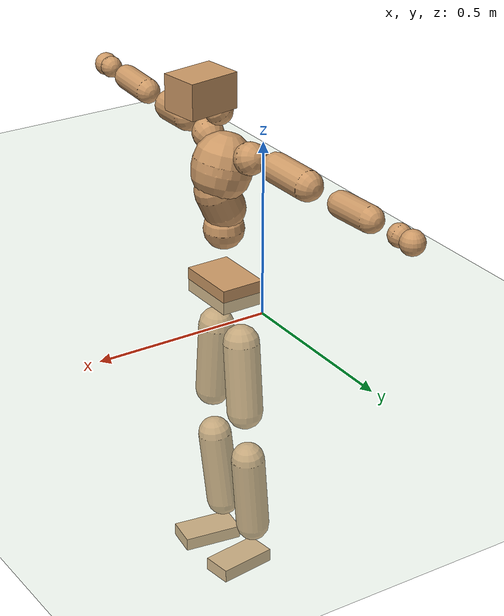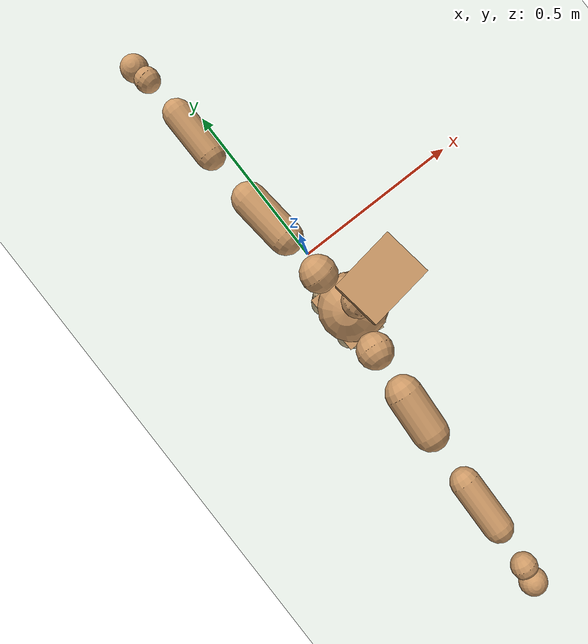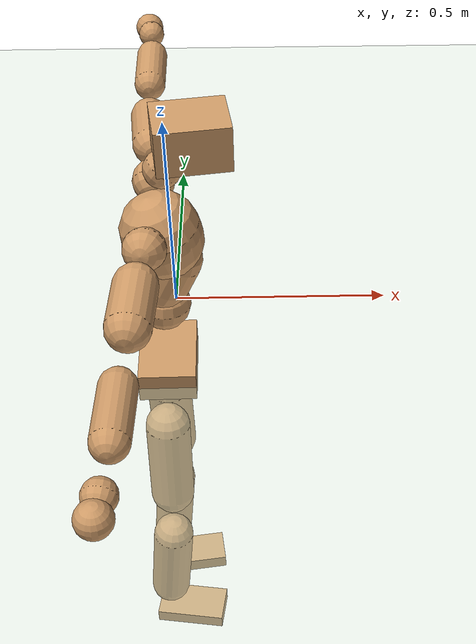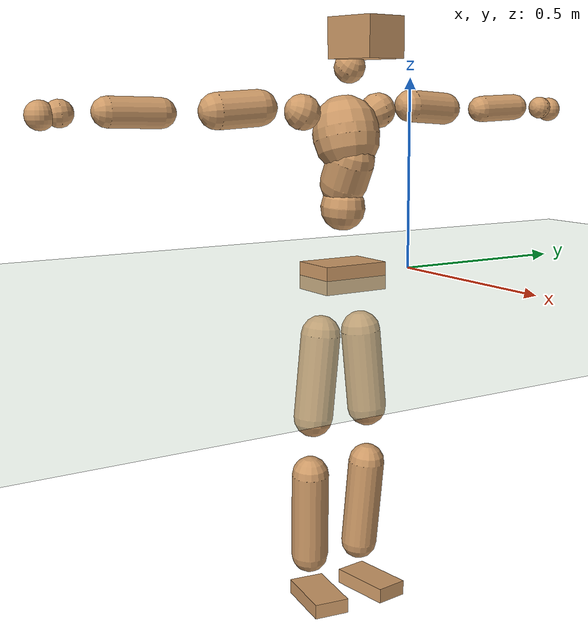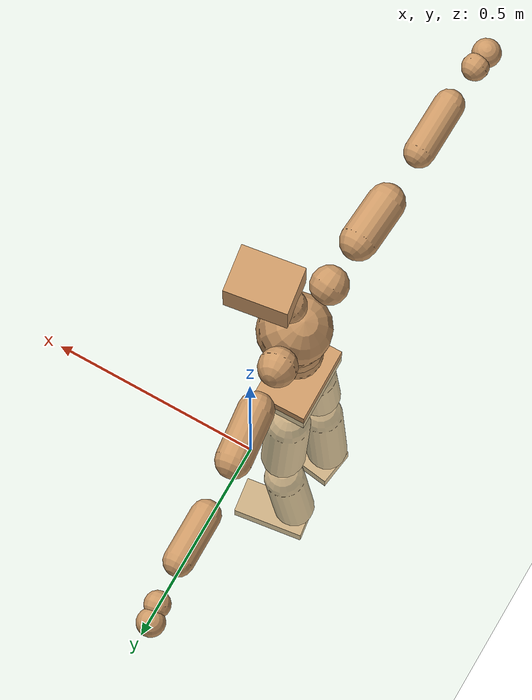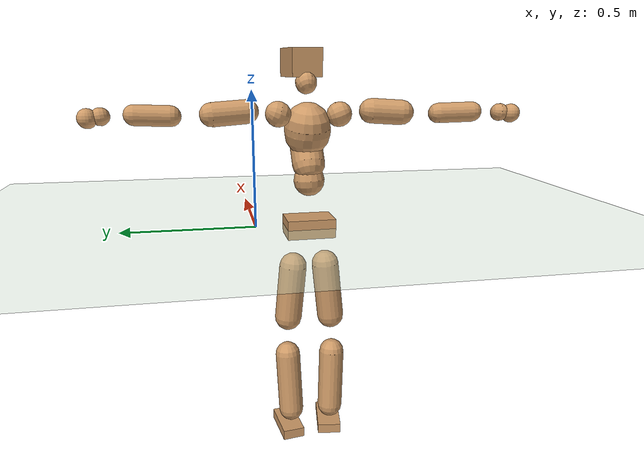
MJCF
<mujoco model="humanoid">
  <compiler coordinate="local" angle="radian"/>
  <default>
    <joint damping="0.0" armature="0.01" stiffness="0.0" limited="true"/>
    <geom conaffinity="1" condim="3" contype="7" margin="0.001" rgba="0.8 0.6 .4 1"/>
  </default>
  <asset>
    <texture type="skybox" builtin="gradient" rgb1=".4 .5 .6" rgb2="0 0 0" width="100" height="100"/>
    <texture builtin="flat" height="1278" mark="cross" markrgb="1 1 1" name="texgeom" random="0.01" rgb1="0.8 0.6 0.4" rgb2="0.8 0.6 0.4" type="cube" width="127"/>
    <texture builtin="checker" height="100" name="texplane" rgb1="0 0 0" rgb2="0.8 0.8 0.8" type="2d" width="100"/>
    <material name="MatPlane" reflectance="0.5" shininess="1" specular="1" texrepeat="60 60" texture="texplane"/>
    <material name="geom" texture="texgeom" texuniform="true"/>
  </asset>
  <worldbody>
    <light cutoff="100" diffuse="1 1 1" dir="-0 0 -1.3" directional="true" exponent="1" pos="0 0 1.3" specular=".1 .1 .1"/>
    <geom conaffinity="1" condim="3" name="floor" pos="0 0 0" rgba="0.8 0.9 0.8 1" size="100 100 .2" type="plane" material="MatPlane"/>
    <body name="Pelvis" pos="-0.0015 -0.2035 0.0093">
      <freejoint name="Pelvis"/>
      <geom type="box" contype="1" conaffinity="1" density="5359.375082" pos="-0.0072 -0.0001 -0.0120" size="0.0642 0.0913 0.0358" quat="1.0000 0.0000 0.0000 0.0074" name="Pelvis"/>
      <body name="L_Hip" pos="-0.02 0.0571 -0.086">
        <joint name="L_Hip_x" type="hinge" pos="0 0 0" axis="1 0 0" stiffness="1600" damping="160" armature="0.02" range="-180.0000 180.0000"/>
        <joint name="L_Hip_y" type="hinge" pos="0 0 0" axis="0 1 0" stiffness="1600" damping="160" armature="0.02" range="-180.0000 180.0000"/>
        <joint name="L_Hip_z" type="hinge" pos="0 0 0" axis="0 0 1" stiffness="1600" damping="160" armature="0.02" range="-180.0000 180.0000"/>
        <geom type="capsule" contype="1" conaffinity="1" density="2040.816327" size="0.0526" fromto="0.0004 0.0080 -0.0822 0.0014 0.0286 -0.2953" name="L_Hip"/>
        <body name="L_Knee" pos="0.0018 0.0365 -0.3775">
          <joint name="L_Knee_x" type="hinge" pos="0 0 0" axis="1 0 0" stiffness="1600" damping="160" armature="0.02" range="-180.0000 180.0000"/>
          <joint name="L_Knee_y" type="hinge" pos="0 0 0" axis="0 1 0" stiffness="1600" damping="160" armature="0.02" range="-180.0000 180.0000"/>
          <joint name="L_Knee_z" type="hinge" pos="0 0 0" axis="0 0 1" stiffness="1600" damping="160" armature="0.02" range="-180.0000 180.0000"/>
          <geom type="capsule" contype="1" conaffinity="1" density="1234.567901" size="0.0491" fromto="-0.0075 -0.0027 -0.0787 -0.0303 -0.0110 -0.3182" name="L_Knee"/>
          <body name="L_Ankle" pos="-0.0378 -0.0137 -0.3969">
            <joint name="L_Ankle_x" type="hinge" pos="0 0 0" axis="1 0 0" stiffness="1600" damping="160" armature="0.02" range="-180.0000 180.0000"/>
            <joint name="L_Ankle_y" type="hinge" pos="0 0 0" axis="0 1 0" stiffness="1600" damping="160" armature="0.02" range="-180.0000 180.0000"/>
            <joint name="L_Ankle_z" type="hinge" pos="0 0 0" axis="0 0 1" stiffness="1600" damping="160" armature="0.02" range="-180.0000 180.0000"/>
            <geom type="box" contype="1" conaffinity="1" density="999.999946" pos="0.0600 0.0080 -0.0278" size="0.0861 0.0434 0.02" quat="0.9978 0.0000 0.0000 0.0659" name="L_Ankle"/>
            <body name="L_Toe" pos="0.12 0.0159 -0.0556">
              <joint name="L_Toe_x" type="hinge" pos="0 0 0" axis="1 0 0" stiffness="1000" damping="100" armature="0.02" range="-180.0000 180.0000"/>
              <joint name="L_Toe_y" type="hinge" pos="0 0 0" axis="0 1 0" stiffness="1000" damping="100" armature="0.02" range="-180.0000 180.0000"/>
              <joint name="L_Toe_z" type="hinge" pos="0 0 0" axis="0 0 1" stiffness="1000" damping="100" armature="0.02" range="-180.0000 180.0000"/>
              <geom type="box" contype="1" conaffinity="1" density="9069497.550901" pos="0.0000 0.0000 0.0280" size="0.0009 0.0022 0.001" quat="0.9973 0.0000 0.0000 0.0729" name="L_Toe"/>
            </body>
          </body>
        </body>
      </body>
      <body name="R_Hip" pos="-0.0159 -0.0544 -0.0841">
        <joint name="R_Hip_x" type="hinge" pos="0 0 0" axis="1 0 0" stiffness="1600" damping="160" armature="0.02" range="-180.0000 180.0000"/>
        <joint name="R_Hip_y" type="hinge" pos="0 0 0" axis="0 1 0" stiffness="1600" damping="160" armature="0.02" range="-180.0000 180.0000"/>
        <joint name="R_Hip_z" type="hinge" pos="0 0 0" axis="0 0 1" stiffness="1600" damping="160" armature="0.02" range="-180.0000 180.0000"/>
        <geom type="capsule" contype="1" conaffinity="1" density="2040.816327" size="0.0519" fromto="-0.0004 -0.0085 -0.0815 -0.0016 -0.0314 -0.3016" name="R_Hip"/>
        <body name="R_Knee" pos="-0.0021 -0.0399 -0.3831">
          <joint name="R_Knee_x" type="hinge" pos="0 0 0" axis="1 0 0" stiffness="1600" damping="160" armature="0.02" range="-180.0000 180.0000"/>
          <joint name="R_Knee_y" type="hinge" pos="0 0 0" axis="0 1 0" stiffness="1600" damping="160" armature="0.02" range="-180.0000 180.0000"/>
          <joint name="R_Knee_z" type="hinge" pos="0 0 0" axis="0 0 1" stiffness="1600" damping="160" armature="0.02" range="-180.0000 180.0000"/>
          <geom type="capsule" contype="1" conaffinity="1" density="1234.567901" size="0.0494" fromto="-0.0073 0.0034 -0.0790 -0.0291 0.0135 -0.3156" name="R_Knee"/>
          <body name="R_Ankle" pos="-0.0364 0.0169 -0.3947">
            <joint name="R_Ankle_x" type="hinge" pos="0 0 0" axis="1 0 0" stiffness="1600" damping="160" armature="0.02" range="-180.0000 180.0000"/>
            <joint name="R_Ankle_y" type="hinge" pos="0 0 0" axis="0 1 0" stiffness="1600" damping="160" armature="0.02" range="-180.0000 180.0000"/>
            <joint name="R_Ankle_z" type="hinge" pos="0 0 0" axis="0 0 1" stiffness="1600" damping="160" armature="0.02" range="-180.0000 180.0000"/>
            <geom type="box" contype="1" conaffinity="1" density="999.999954" pos="0.0615 -0.0087 -0.0222" size="0.0871 0.0469 0.0194" quat="0.9975 0.0000 0.0000 -0.0705" name="R_Ankle"/>
            <body name="R_Toe" pos="0.123 -0.0175 -0.0445">
              <joint name="R_Toe_x" type="hinge" pos="0 0 0" axis="1 0 0" stiffness="1000" damping="100" armature="0.02" range="-180.0000 180.0000"/>
              <joint name="R_Toe_y" type="hinge" pos="0 0 0" axis="0 1 0" stiffness="1000" damping="100" armature="0.02" range="-180.0000 180.0000"/>
              <joint name="R_Toe_z" type="hinge" pos="0 0 0" axis="0 0 1" stiffness="1000" damping="100" armature="0.02" range="-180.0000 180.0000"/>
              <geom type="box" contype="1" conaffinity="1" density="8524218.641998" pos="0.0000 0.0000 0.0253" size="0.0008 0.0023 0.0011" quat="0.9981 0.0000 0.0000 -0.0616" name="R_Toe"/>
            </body>
          </body>
        </body>
      </body>
      <body name="Torso" pos="-0.0075 -0.0034 0.0978">
        <joint name="Torso_x" type="hinge" pos="0 0 0" axis="1 0 0" stiffness="2000" damping="200" armature="0.02" range="-180.0000 180.0000"/>
        <joint name="Torso_y" type="hinge" pos="0 0 0" axis="0 1 0" stiffness="2000" damping="200" armature="0.02" range="-180.0000 180.0000"/>
        <joint name="Torso_z" type="hinge" pos="0 0 0" axis="0 0 1" stiffness="2000" damping="200" armature="0.02" range="-180.0000 180.0000"/>
        <geom type="capsule" contype="1" conaffinity="1" density="2040.816327" size="0.0584" fromto="0.0024 0.0021 0.0659 0.0025 0.0022 0.0679" name="Torso"/>
        <body name="Spine" pos="0.0049 0.0043 0.1338">
          <joint name="Spine_x" type="hinge" pos="0 0 0" axis="1 0 0" stiffness="2000" damping="200" armature="0.02" range="-180.0000 180.0000"/>
          <joint name="Spine_y" type="hinge" pos="0 0 0" axis="0 1 0" stiffness="2000" damping="200" armature="0.02" range="-180.0000 180.0000"/>
          <joint name="Spine_z" type="hinge" pos="0 0 0" axis="0 0 1" stiffness="2000" damping="200" armature="0.02" range="-180.0000 180.0000"/>
          <geom type="capsule" contype="1" conaffinity="1" density="2040.816327" size="0.0611" fromto="0.0261 0.0034 0.0551 -0.0026 -0.0003 -0.0055" name="Spine"/>
          <body name="Chest" pos="0.0235 0.0031 0.0496">
            <joint name="Chest_x" type="hinge" pos="0 0 0" axis="1 0 0" stiffness="2000" damping="200" armature="0.02" range="-180.0000 180.0000"/>
            <joint name="Chest_y" type="hinge" pos="0 0 0" axis="0 1 0" stiffness="2000" damping="200" armature="0.02" range="-180.0000 180.0000"/>
            <joint name="Chest_z" type="hinge" pos="0 0 0" axis="0 0 1" stiffness="2000" damping="200" armature="0.02" range="-180.0000 180.0000"/>
            <geom type="capsule" contype="1" conaffinity="1" density="2040.816327" size="0.0851" fromto="-0.0222 -0.0007 0.0822 -0.0155 -0.0005 0.0574" name="Chest"/>
            <body name="Neck" pos="-0.0362 -0.0016 0.2001">
              <joint name="Neck_x" type="hinge" pos="0 0 0" axis="1 0 0" stiffness="1000" damping="100" armature="0.02" range="-180.0000 180.0000"/>
              <joint name="Neck_y" type="hinge" pos="0 0 0" axis="0 1 0" stiffness="1000" damping="100" armature="0.02" range="-180.0000 180.0000"/>
              <joint name="Neck_z" type="hinge" pos="0 0 0" axis="0 0 1" stiffness="1000" damping="100" armature="0.02" range="-180.0000 180.0000"/>
              <geom type="capsule" contype="1" conaffinity="1" density="1000" size="0.0393" fromto="0.0285 0.0033 0.0332 0.0298 0.0035 0.0347" name="Neck"/>
              <body name="Head" pos="0.0583 0.0068 0.068">
                <joint name="Head_x" type="hinge" pos="0 0 0" axis="1 0 0" stiffness="1000" damping="100" armature="0.02" range="-180.0000 180.0000"/>
                <joint name="Head_y" type="hinge" pos="0 0 0" axis="0 1 0" stiffness="1000" damping="100" armature="0.02" range="-180.0000 180.0000"/>
                <joint name="Head_z" type="hinge" pos="0 0 0" axis="0 0 1" stiffness="1000" damping="100" armature="0.02" range="-180.0000 180.0000"/>
                <geom type="box" contype="1" conaffinity="1" density="2249.999983" pos="0.0302 0.0044 0.0350" size="0.0759 0.0571 0.0505" quat="0.9974 0.0000 0.0000 0.0723" name="Head"/>
              </body>
            </body>
            <body name="L_Thorax" pos="-0.0364 0.0682 0.1108">
              <joint name="L_Thorax_x" type="hinge" pos="0 0 0" axis="1 0 0" stiffness="1000" damping="100" armature="0.02" range="-180.0000 180.0000"/>
              <joint name="L_Thorax_y" type="hinge" pos="0 0 0" axis="0 1 0" stiffness="1000" damping="100" armature="0.02" range="-180.0000 180.0000"/>
              <joint name="L_Thorax_z" type="hinge" pos="0 0 0" axis="0 0 1" stiffness="1000" damping="100" armature="0.02" range="-180.0000 180.0000"/>
              <geom type="capsule" contype="1" conaffinity="1" density="1000" size="0.0455" fromto="-0.0015 0.0423 0.0165 -0.0013 0.0390 0.0152" name="L_Thorax"/>
              <body name="L_Shoulder" pos="-0.0028 0.0814 0.0317">
                <joint name="L_Shoulder_x" type="hinge" pos="0 0 0" axis="1 0 0" stiffness="1000" damping="100" armature="0.02" range="-720.0000 720.0000"/>
                <joint name="L_Shoulder_y" type="hinge" pos="0 0 0" axis="0 1 0" stiffness="1000" damping="100" armature="0.02" range="-720.0000 720.0000"/>
                <joint name="L_Shoulder_z" type="hinge" pos="0 0 0" axis="0 0 1" stiffness="1000" damping="100" armature="0.02" range="-720.0000 720.0000"/>
                <geom type="capsule" contype="1" conaffinity="1" density="1000" size="0.0423" fromto="-0.0073 0.0718 -0.0046 -0.0198 0.1952 -0.0126" name="L_Shoulder"/>
                <body name="L_Elbow" pos="-0.0271 0.2669 -0.0173">
                  <joint name="L_Elbow_x" type="hinge" pos="0 0 0" axis="1 0 0" stiffness="1000" damping="100" armature="0.02" range="-720.0000 720.0000"/>
                  <joint name="L_Elbow_y" type="hinge" pos="0 0 0" axis="0 1 0" stiffness="1000" damping="100" armature="0.02" range="-720.0000 720.0000"/>
                  <joint name="L_Elbow_z" type="hinge" pos="0 0 0" axis="0 0 1" stiffness="1000" damping="100" armature="0.02" range="-720.0000 720.0000"/>
                  <geom type="capsule" contype="1" conaffinity="1" density="1000" size="0.0356" fromto="-0.0006 0.0655 0.0026 -0.0017 0.1868 0.0073" name="L_Elbow"/>
                  <body name="L_Wrist" pos="-0.0024 0.2523 0.0099">
                    <joint name="L_Wrist_x" type="hinge" pos="0 0 0" axis="1 0 0" stiffness="600" damping="60" armature="0.02" range="-180.0000 180.0000"/>
                    <joint name="L_Wrist_y" type="hinge" pos="0 0 0" axis="0 1 0" stiffness="600" damping="60" armature="0.02" range="-180.0000 180.0000"/>
                    <joint name="L_Wrist_z" type="hinge" pos="0 0 0" axis="0 0 1" stiffness="600" damping="60" armature="0.02" range="-180.0000 180.0000"/>
                    <geom type="capsule" contype="1" conaffinity="1" density="1000" size="0.0305" fromto="-0.0069 0.0404 -0.0049 -0.0072 0.0424 -0.0052" name="L_Wrist"/>
                    <body name="L_Hand" pos="-0.0141 0.0828 -0.0101">
                      <joint name="L_Hand_x" type="hinge" pos="0 0 0" axis="1 0 0" stiffness="600" damping="60" armature="0.02" range="-180.0000 180.0000"/>
                      <joint name="L_Hand_y" type="hinge" pos="0 0 0" axis="0 1 0" stiffness="600" damping="60" armature="0.02" range="-180.0000 180.0000"/>
                      <joint name="L_Hand_z" type="hinge" pos="0 0 0" axis="0 0 1" stiffness="600" damping="60" armature="0.02" range="-180.0000 180.0000"/>
                      <geom type="sphere" contype="1" conaffinity="1" density="1000" size="0.0332" pos="0.0000 0.0000 0.0000" name="L_Hand"/>
                    </body>
                  </body>
                </body>
              </body>
            </body>
            <body name="R_Thorax" pos="-0.0405 -0.0701 0.1079">
              <joint name="R_Thorax_x" type="hinge" pos="0 0 0" axis="1 0 0" stiffness="1000" damping="100" armature="0.02" range="-180.0000 180.0000"/>
              <joint name="R_Thorax_y" type="hinge" pos="0 0 0" axis="0 1 0" stiffness="1000" damping="100" armature="0.02" range="-180.0000 180.0000"/>
              <joint name="R_Thorax_z" type="hinge" pos="0 0 0" axis="0 0 1" stiffness="1000" damping="100" armature="0.02" range="-180.0000 180.0000"/>
              <geom type="capsule" contype="1" conaffinity="1" density="1000" size="0.0451" fromto="-0.0035 -0.0426 0.0159 -0.0037 -0.0445 0.0166" name="R_Thorax"/>
              <body name="R_Shoulder" pos="-0.0072 -0.0871 0.0324">
                <joint name="R_Shoulder_x" type="hinge" pos="0 0 0" axis="1 0 0" stiffness="1000" damping="100" armature="0.02" range="-720.0000 720.0000"/>
                <joint name="R_Shoulder_y" type="hinge" pos="0 0 0" axis="0 1 0" stiffness="1000" damping="100" armature="0.02" range="-720.0000 720.0000"/>
                <joint name="R_Shoulder_z" type="hinge" pos="0 0 0" axis="0 0 1" stiffness="1000" damping="100" armature="0.02" range="-720.0000 720.0000"/>
                <geom type="capsule" contype="1" conaffinity="1" density="1000" size="0.0449" fromto="-0.0049 -0.0746 -0.0048 -0.0121 -0.1863 -0.0119" name="R_Shoulder"/>
                <body name="R_Elbow" pos="-0.017 -0.2609 -0.0167">
                  <joint name="R_Elbow_x" type="hinge" pos="0 0 0" axis="1 0 0" stiffness="1000" damping="100" armature="0.02" range="-720.0000 720.0000"/>
                  <joint name="R_Elbow_y" type="hinge" pos="0 0 0" axis="0 1 0" stiffness="1000" damping="100" armature="0.02" range="-720.0000 720.0000"/>
                  <joint name="R_Elbow_z" type="hinge" pos="0 0 0" axis="0 0 1" stiffness="1000" damping="100" armature="0.02" range="-720.0000 720.0000"/>
                  <geom type="capsule" contype="1" conaffinity="1" density="1000" size="0.0363" fromto="-0.0019 -0.0663 0.0016 -0.0056 -0.1963 0.0048" name="R_Elbow"/>
                  <body name="R_Wrist" pos="-0.0075 -0.2625 0.0064">
                    <joint name="R_Wrist_x" type="hinge" pos="0 0 0" axis="1 0 0" stiffness="600" damping="60" armature="0.02" range="-180.0000 180.0000"/>
                    <joint name="R_Wrist_y" type="hinge" pos="0 0 0" axis="0 1 0" stiffness="600" damping="60" armature="0.02" range="-180.0000 180.0000"/>
                    <joint name="R_Wrist_z" type="hinge" pos="0 0 0" axis="0 0 1" stiffness="600" damping="60" armature="0.02" range="-180.0000 180.0000"/>
                    <geom type="capsule" contype="1" conaffinity="1" density="1000" size="0.0319" fromto="-0.0054 -0.0417 -0.0038 -0.0056 -0.0436 -0.0040" name="R_Wrist"/>
                    <body name="R_Hand" pos="-0.011 -0.0853 -0.0077">
                      <joint name="R_Hand_x" type="hinge" pos="0 0 0" axis="1 0 0" stiffness="600" damping="60" armature="0.02" range="-180.0000 180.0000"/>
                      <joint name="R_Hand_y" type="hinge" pos="0 0 0" axis="0 1 0" stiffness="600" damping="60" armature="0.02" range="-180.0000 180.0000"/>
                      <joint name="R_Hand_z" type="hinge" pos="0 0 0" axis="0 0 1" stiffness="600" damping="60" armature="0.02" range="-180.0000 180.0000"/>
                      <geom type="sphere" contype="1" conaffinity="1" density="1000" size="0.0340" pos="0.0000 0.0000 0.0000" name="R_Hand"/>
                    </body>
                  </body>
                </body>
              </body>
            </body>
          </body>
        </body>
      </body>
    </body>
  </worldbody>
  <actuator>
    <motor name="L_Hip_x" joint="L_Hip_x" gear="500"/>
    <motor name="L_Hip_y" joint="L_Hip_y" gear="500"/>
    <motor name="L_Hip_z" joint="L_Hip_z" gear="500"/>
    <motor name="L_Knee_x" joint="L_Knee_x" gear="500"/>
    <motor name="L_Knee_y" joint="L_Knee_y" gear="500"/>
    <motor name="L_Knee_z" joint="L_Knee_z" gear="500"/>
    <motor name="L_Ankle_x" joint="L_Ankle_x" gear="500"/>
    <motor name="L_Ankle_y" joint="L_Ankle_y" gear="500"/>
    <motor name="L_Ankle_z" joint="L_Ankle_z" gear="500"/>
    <motor name="L_Toe_x" joint="L_Toe_x" gear="500"/>
    <motor name="L_Toe_y" joint="L_Toe_y" gear="500"/>
    <motor name="L_Toe_z" joint="L_Toe_z" gear="500"/>
    <motor name="R_Hip_x" joint="R_Hip_x" gear="500"/>
    <motor name="R_Hip_y" joint="R_Hip_y" gear="500"/>
    <motor name="R_Hip_z" joint="R_Hip_z" gear="500"/>
    <motor name="R_Knee_x" joint="R_Knee_x" gear="500"/>
    <motor name="R_Knee_y" joint="R_Knee_y" gear="500"/>
    <motor name="R_Knee_z" joint="R_Knee_z" gear="500"/>
    <motor name="R_Ankle_x" joint="R_Ankle_x" gear="500"/>
    <motor name="R_Ankle_y" joint="R_Ankle_y" gear="500"/>
    <motor name="R_Ankle_z" joint="R_Ankle_z" gear="500"/>
    <motor name="R_Toe_x" joint="R_Toe_x" gear="500"/>
    <motor name="R_Toe_y" joint="R_Toe_y" gear="500"/>
    <motor name="R_Toe_z" joint="R_Toe_z" gear="500"/>
    <motor name="Torso_x" joint="Torso_x" gear="500"/>
    <motor name="Torso_y" joint="Torso_y" gear="500"/>
    <motor name="Torso_z" joint="Torso_z" gear="500"/>
    <motor name="Spine_x" joint="Spine_x" gear="500"/>
    <motor name="Spine_y" joint="Spine_y" gear="500"/>
    <motor name="Spine_z" joint="Spine_z" gear="500"/>
    <motor name="Chest_x" joint="Chest_x" gear="500"/>
    <motor name="Chest_y" joint="Chest_y" gear="500"/>
    <motor name="Chest_z" joint="Chest_z" gear="500"/>
    <motor name="Neck_x" joint="Neck_x" gear="500"/>
    <motor name="Neck_y" joint="Neck_y" gear="500"/>
    <motor name="Neck_z" joint="Neck_z" gear="500"/>
    <motor name="Head_x" joint="Head_x" gear="500"/>
    <motor name="Head_y" joint="Head_y" gear="500"/>
    <motor name="Head_z" joint="Head_z" gear="500"/>
    <motor name="L_Thorax_x" joint="L_Thorax_x" gear="500"/>
    <motor name="L_Thorax_y" joint="L_Thorax_y" gear="500"/>
    <motor name="L_Thorax_z" joint="L_Thorax_z" gear="500"/>
    <motor name="L_Shoulder_x" joint="L_Shoulder_x" gear="500"/>
    <motor name="L_Shoulder_y" joint="L_Shoulder_y" gear="500"/>
    <motor name="L_Shoulder_z" joint="L_Shoulder_z" gear="500"/>
    <motor name="L_Elbow_x" joint="L_Elbow_x" gear="500"/>
    <motor name="L_Elbow_y" joint="L_Elbow_y" gear="500"/>
    <motor name="L_Elbow_z" joint="L_Elbow_z" gear="500"/>
    <motor name="L_Wrist_x" joint="L_Wrist_x" gear="500"/>
    <motor name="L_Wrist_y" joint="L_Wrist_y" gear="500"/>
    <motor name="L_Wrist_z" joint="L_Wrist_z" gear="500"/>
    <motor name="L_Hand_x" joint="L_Hand_x" gear="500"/>
    <motor name="L_Hand_y" joint="L_Hand_y" gear="500"/>
    <motor name="L_Hand_z" joint="L_Hand_z" gear="500"/>
    <motor name="R_Thorax_x" joint="R_Thorax_x" gear="500"/>
    <motor name="R_Thorax_y" joint="R_Thorax_y" gear="500"/>
    <motor name="R_Thorax_z" joint="R_Thorax_z" gear="500"/>
    <motor name="R_Shoulder_x" joint="R_Shoulder_x" gear="500"/>
    <motor name="R_Shoulder_y" joint="R_Shoulder_y" gear="500"/>
    <motor name="R_Shoulder_z" joint="R_Shoulder_z" gear="500"/>
    <motor name="R_Elbow_x" joint="R_Elbow_x" gear="500"/>
    <motor name="R_Elbow_y" joint="R_Elbow_y" gear="500"/>
    <motor name="R_Elbow_z" joint="R_Elbow_z" gear="500"/>
    <motor name="R_Wrist_x" joint="R_Wrist_x" gear="500"/>
    <motor name="R_Wrist_y" joint="R_Wrist_y" gear="500"/>
    <motor name="R_Wrist_z" joint="R_Wrist_z" gear="500"/>
    <motor name="R_Hand_x" joint="R_Hand_x" gear="500"/>
    <motor name="R_Hand_y" joint="R_Hand_y" gear="500"/>
    <motor name="R_Hand_z" joint="R_Hand_z" gear="500"/>
  </actuator>
  <contact>
    <exclude body1="Torso" body2="Chest"/>
    <exclude body1="Head" body2="Chest"/>
    <exclude body1="R_Knee" body2="R_Toe"/>
    <exclude body1="R_Knee" body2="L_Ankle"/>
    <exclude body1="R_Knee" body2="L_Toe"/>
    <exclude body1="L_Knee" body2="L_Toe"/>
    <exclude body1="L_Knee" body2="R_Ankle"/>
    <exclude body1="L_Knee" body2="R_Toe"/>
    <exclude body1="L_Shoulder" body2="Chest"/>
    <exclude body1="R_Shoulder" body2="Chest"/>
  </contact>
  <sensor/>
  <size njmax="700" nconmax="700"/>
</mujoco>
